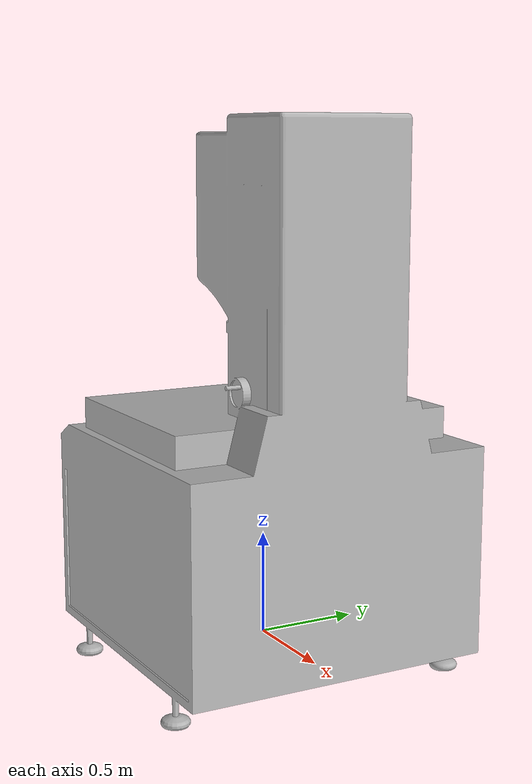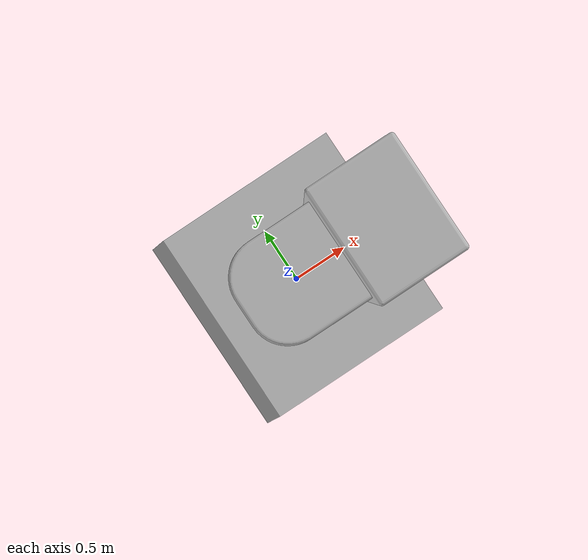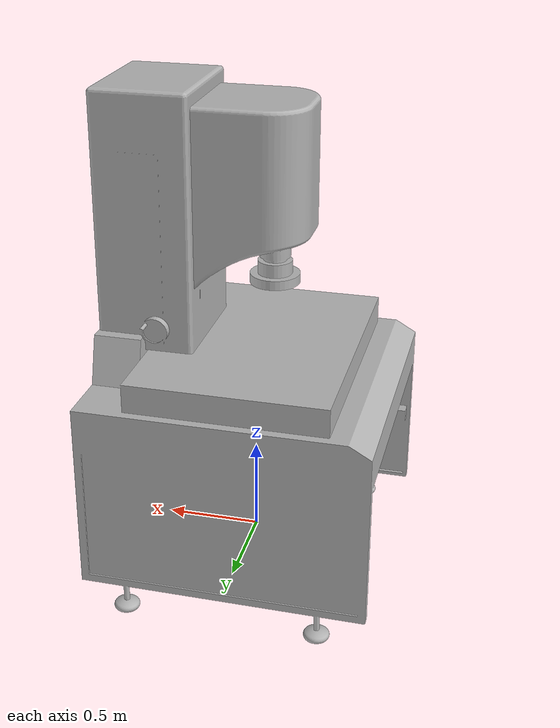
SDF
<?xml version="1.0" ?>
<sdf version="1.6">
  <model name="2D Vision Measurement Machine">
    <static>true</static>
    <link name="link">
      <visual name="visual">
        <geometry>
          <mesh>
            <uri>model://2D Vision Measurement Machine/meshes/2D_Vision_Measurement_Machine.obj</uri>
          </mesh>
        </geometry>
      </visual>
      <collision name="collision">
        <geometry>
          <mesh>
            <uri>model://2D Vision Measurement Machine/meshes/2D_Vision_Measurement_Machine.obj</uri>
          </mesh>
        </geometry>
      </collision>
    </link>
  </model>
</sdf>
